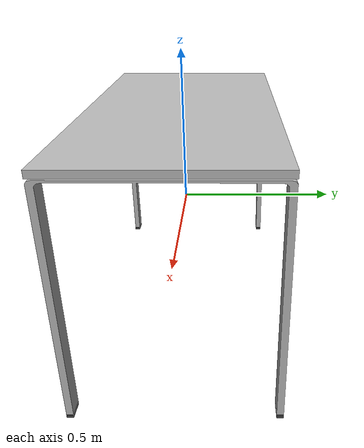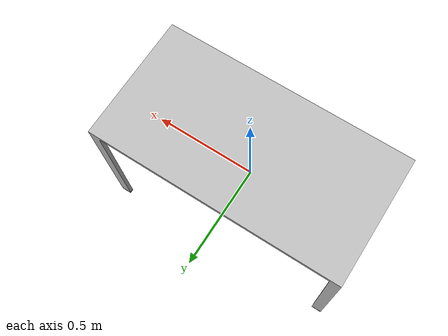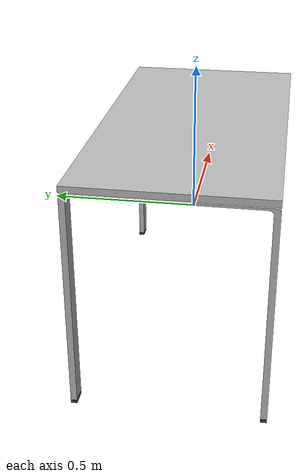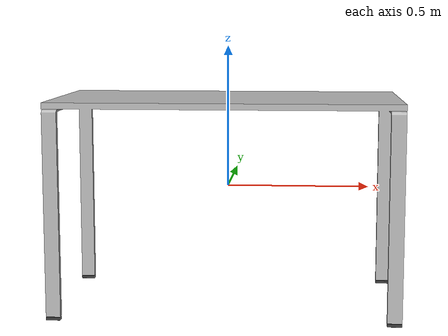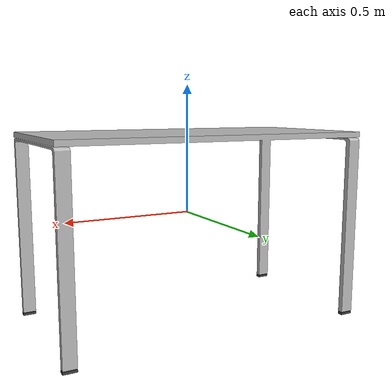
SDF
<?xml version='1.0'?>
<sdf version='1.5'>
    <model name="413_simple_table">
        <pose>0 0 0 0 0 0</pose>
        <static>false</static>
        <link name='model_body'>
            <visual name="visual">
                <geometry>
                    <mesh>
                        <uri>model://rs_gazebo/meshes/ss_hq4/413_simple_table/413_simple_table_visual.dae</uri>
                        <scale>1 1 1</scale>
                    </mesh>
                </geometry>
            </visual>

            <collision name="collision">
                <geometry>
                    <mesh>
                        <uri>model://rs_gazebo/meshes/ss_hq4/413_simple_table/413_simple_table_collision.stl</uri>
                        <scale>1 1 1</scale>
                    </mesh>
                </geometry>
            </collision>

            <inertial>
                <pose> 0 0 0 0 0 0</pose>
                <inertia>
                    <ixx>0.777625</ixx>
                    <ixy>0</ixy>
                    <ixz>0</ixz>
                    <iyy>2.142625</iyy>
                    <iyz>0</iyz>
                    <izz>2.29525</izz>
                </inertia>
                <mass>15.0</mass>
            </inertial>
        </link>
    </model>
</sdf>
